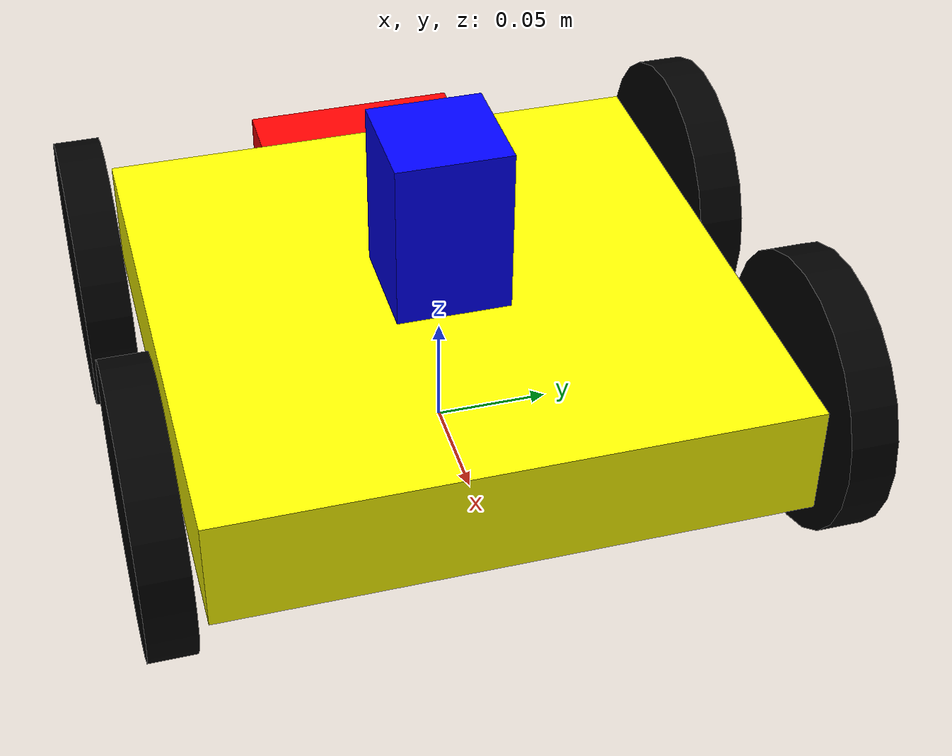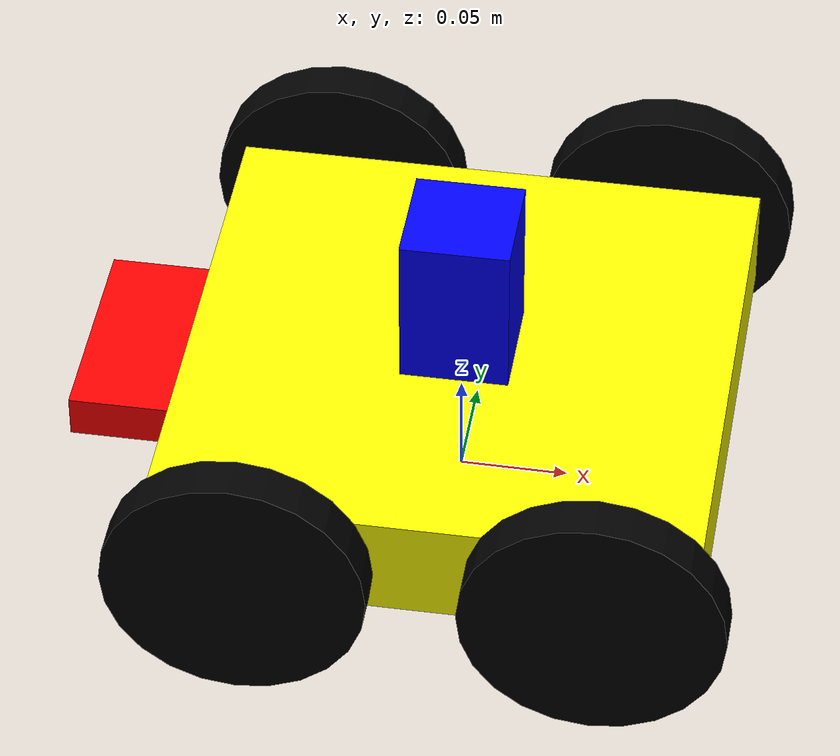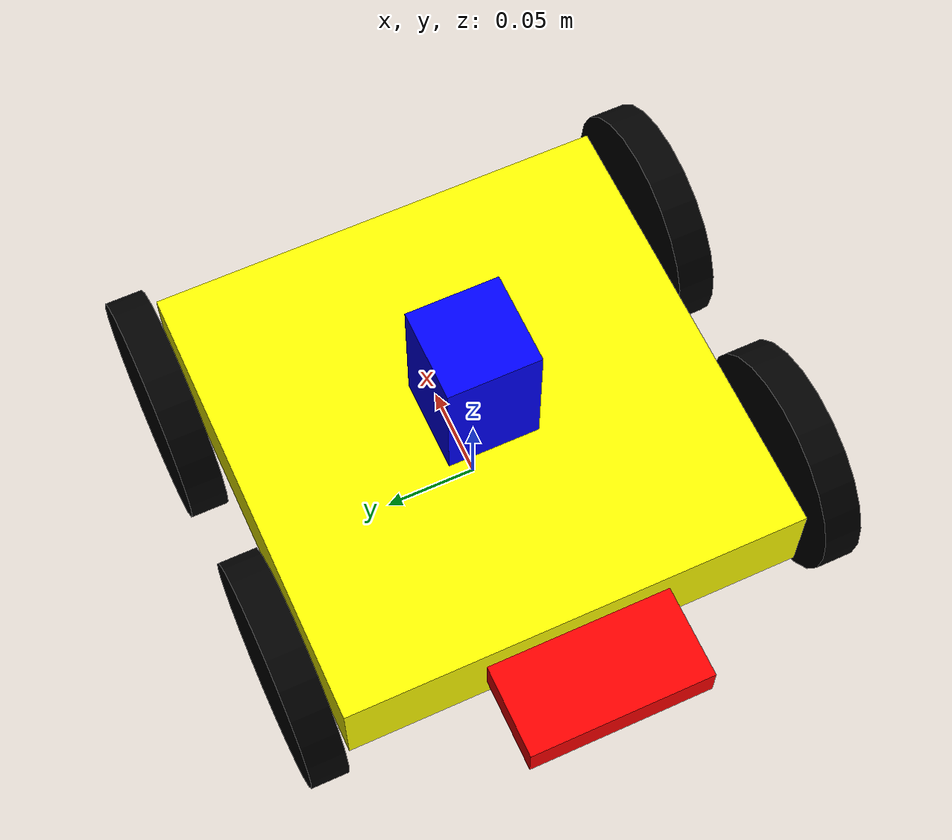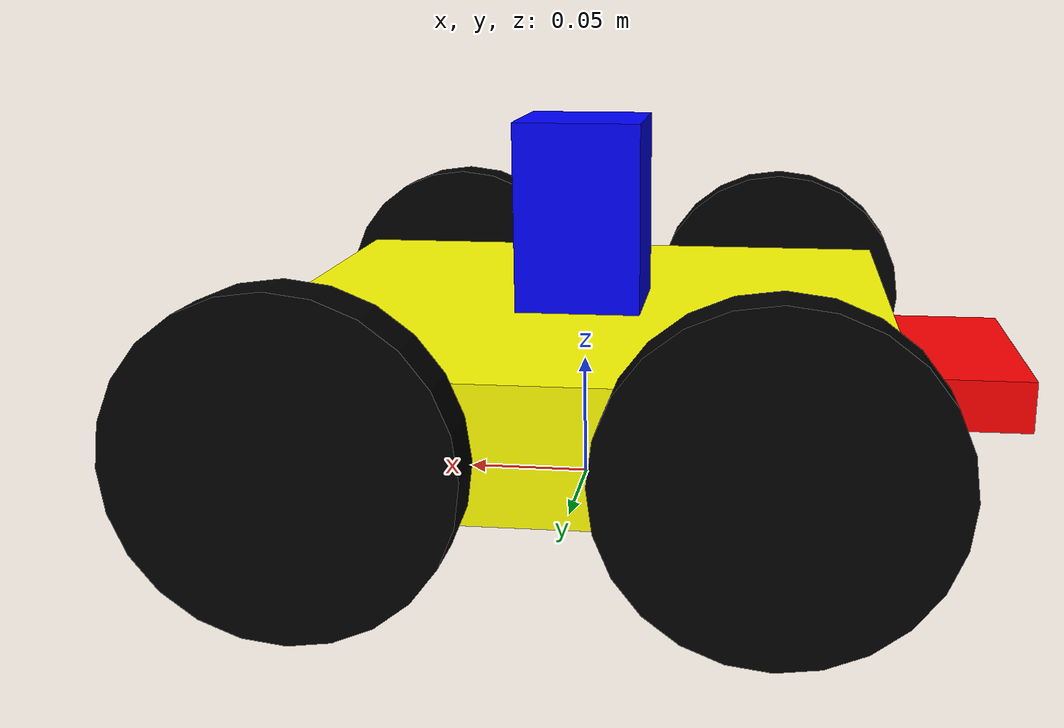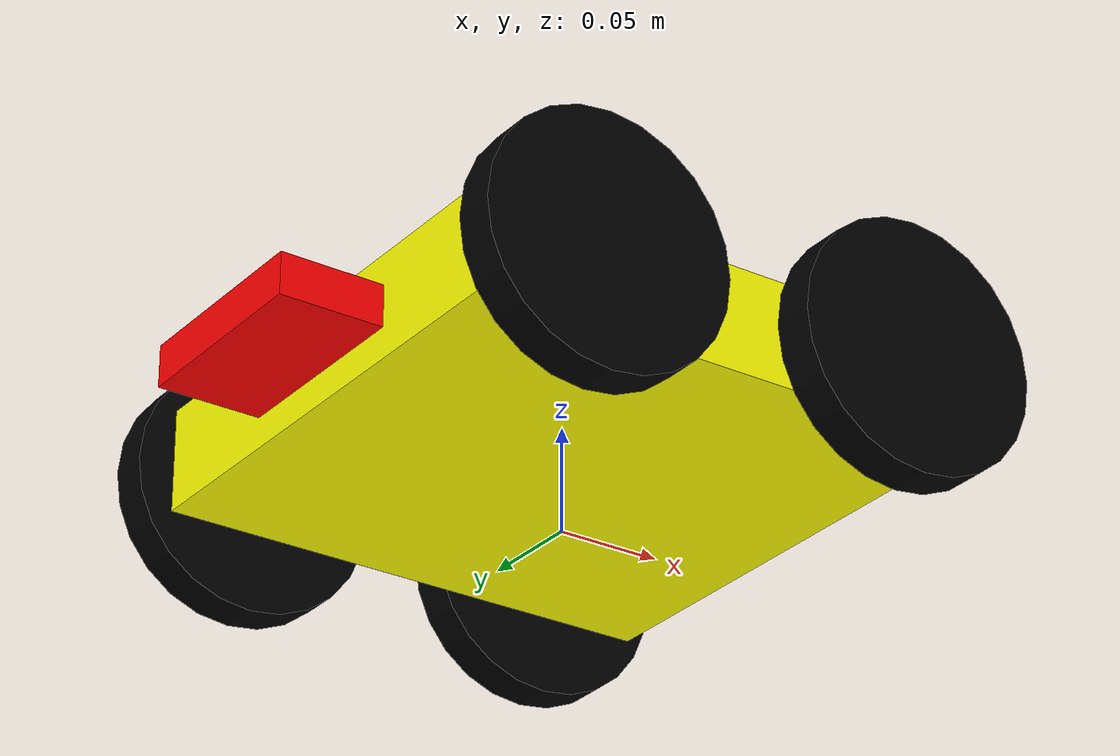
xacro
<robot xmlns:xacro="http://www.ros.org/wiki/xacro">

    <link name="base_footprint"/>

    <xacro:macro name="link_create" params="name mass l w h r g b">
        <link name="${name}">
            <inertial>
                <origin xyz="0.0 0.0 0.0" rpy="0.0 0.0 0.0"/>
                <mass value="${mass}"/>
                <inertia ixx="${(1.0/12.0)*mass*(l*l+h*h)}" ixy="0.0" ixz="0.0" iyy="${(1.0/12.0)*mass*(w*w+h*h)}" iyz="0.0" izz="${(1.0/12.0)*mass*(l*l+w*w)}"/>
            </inertial>
            <visual name="">
                <origin xyz="0.0 0.0 0.0" rpy="0.0 0.0 0.0"/>
                <geometry>
                    <box size="${w} ${l} ${h}"/>
                </geometry>
                <material name="">
                    <color rgba="${r} ${g} ${b} 1.0"/>
                    <texture filename=""/>
                </material>
            </visual>
            <collision>
                <origin xyz="0.0 0.0 0.0" rpy="0.0 0.0 0.0"/>
                <geometry>
                    <box size="${w} ${l} ${h}"/>
                </geometry>
            </collision>
        </link>
    </xacro:macro>
    <xacro:macro name="wheel_create" params="name mass radius h r g b">
        <link name="${name}">
            <inertial>
                <origin xyz="0.0 0.0 0.0" rpy="0.0 0.0 0.0"/>
                <mass value="${mass}"/>
                <inertia ixx="${(1.0/12.0)*mass*(3*radius*radius+h*h)}" ixy="0.0" ixz="0.0" iyy="${(1.0/12.0)*mass*(3*radius*radius+h*h)}" iyz="0.0" izz="${(1.0/12.0)*mass*radius*radius}"/>
            </inertial>
            <visual name="">
                <origin xyz="0.0 0.0 0.0" rpy="1.57 0.0 0.0"/>
                <geometry>
                    <cylinder radius="${radius}" length="${h}"/>
                </geometry>
                <material name="">
                    <color rgba="${r} ${g} ${b} 1.0"/>
                    <texture filename=""/>
                </material>
            </visual>
            <collision>
                <origin xyz="0.0 0.0 0.0" rpy="1.57 0.0 0.0"/>
                <geometry>
                    <cylinder radius="${radius}" length="${h}"/>
                </geometry>
            </collision>
        </link>
        <transmission name="${name}_wheel_trans" type="SimpleTransmission">
			<type>transmission_interface/SimpleTransmission</type>
			<actuator name="${name}_wheel_motor">
				<mechanicalReduction>1</mechanicalReduction>
			</actuator>
			<joint name="${name}_wheel">
				<hardwareInterface>hardware_interface/VelocityJointInterface</hardwareInterface>
			</joint>
		</transmission>
    </xacro:macro>

    <xacro:link_create name="base_link" mass="1.0" l="0.25" w="0.25" h="0.05" r="1.0" g="1.0" b="0.0"/>

    <xacro:wheel_create name="wheel1" mass="0.5" radius="0.06" h="0.02" r="0.0" g="0.0" b="0.0"/>
    <xacro:wheel_create name="wheel2" mass="0.5" radius="0.06" h="0.02" r="0.0" g="0.0" b="0.0"/>
    <xacro:wheel_create name="wheel3" mass="0.5" radius="0.06" h="0.02" r="0.0" g="0.0" b="0.0"/>
    <xacro:wheel_create name="wheel4" mass="0.5" radius="0.06" h="0.02" r="0.0" g="0.0" b="0.0"/>

    <xacro:link_create name="lidar_link" mass="0.1" l="0.05" w="0.05" h="0.1" r="0.0" g="0.0" b="1.0"/>

    <xacro:link_create name="front_plate" mass="0.001" l="0.10" w="0.05" h="0.02" r="1.0" g="0.0" b="0.0"/>

    <link name="imu_link"/>

    <joint name="base_jnt" type="fixed">
        <origin xyz="0.0 0.0 0.05" rpy="0.0 0.0 -3.14"/>
        <parent link="base_footprint"/>
        <child link="base_link"/>
    </joint>

    <joint name="front_plate_jnt" type="fixed">
        <origin xyz="0.15 0.0 0.0" rpy="0.0 0.0 0.0"/>
        <parent link="base_link"/>
        <child link="front_plate"/>
    </joint>

    <joint name="wheel1_jnt" type="continuous">
        <origin xyz="0.08 -0.140 0.0" rpy="0.0 0.0 0.0"/>
        <parent link="base_link"/>
        <child link="wheel1"/>
        <axis xyz="0.0 1.0 0.0"/>
        <limit effort="10000.0" velocity="1000.0"/>
        <dynamics damping="0.8" friction="0.5"/>
    </joint>
    <joint name="wheel2_jnt" type="continuous">
        <origin xyz="0.08 0.140 0.0" rpy="0.0 0.0 0.0"/>
        <parent link="base_link"/>
        <child link="wheel2"/>
        <axis xyz="0.0 1.0 0.0"/>
        <limit effort="10000.0" velocity="1000.0"/>
        <dynamics damping="0.8" friction="0.5"/>
    </joint>
    <joint name="wheel3_jnt" type="continuous">
        <origin xyz="-0.08 0.140 0.0" rpy="0.0 0.0 0.0"/>
        <parent link="base_link"/>
        <child link="wheel3"/>
        <axis xyz="0.0 1.0 0.0"/>
        <limit effort="10000.0" velocity="1000.0"/>
        <dynamics damping="0.8" friction="0.5"/>
    </joint>
    <joint name="wheel4_jnt" type="continuous">
        <origin xyz="-0.08 -0.140 0.0" rpy="0.0 0.0 0.0"/>
        <parent link="base_link"/>
        <child link="wheel4"/>
        <axis xyz="0.0 1.0 0.0"/>
        <limit effort="10000.0" velocity="1000.0"/>
        <dynamics damping="0.8" friction="0.5"/>
    </joint>

    <joint name="lidar_jnt" type="fixed">
        <origin xyz="0.0 0.0 0.05" rpy="0.0 0.0 0.0"/>
        <parent link="base_link"/>
        <child link="lidar_link"/>
    </joint>

    <joint name="imu_jnt" type="fixed">
        <origin xyz="0.0 0.0 0.0" rpy="0.0 0.0 0.0"/>
        <parent link="base_link"/>
        <child link="imu_link"/>
    </joint>

</robot>
